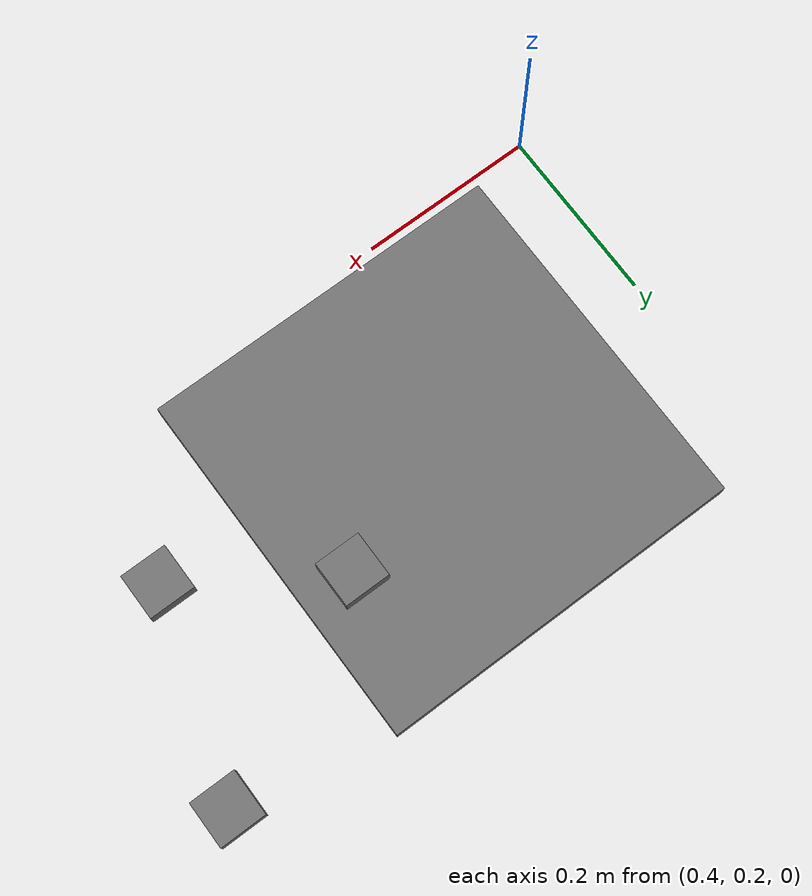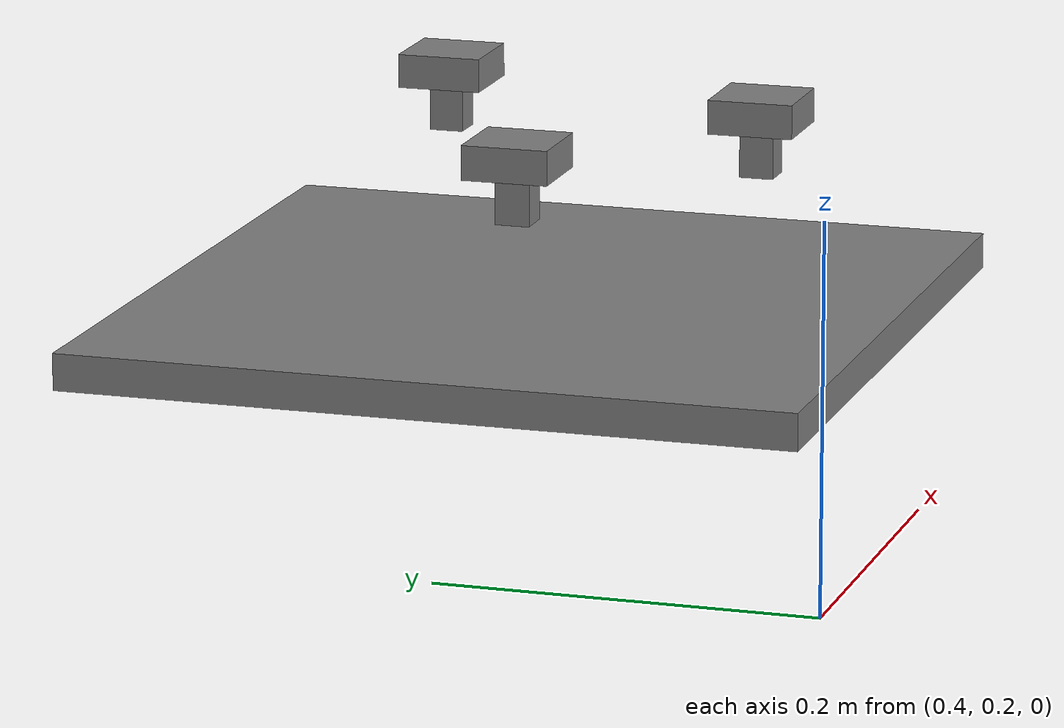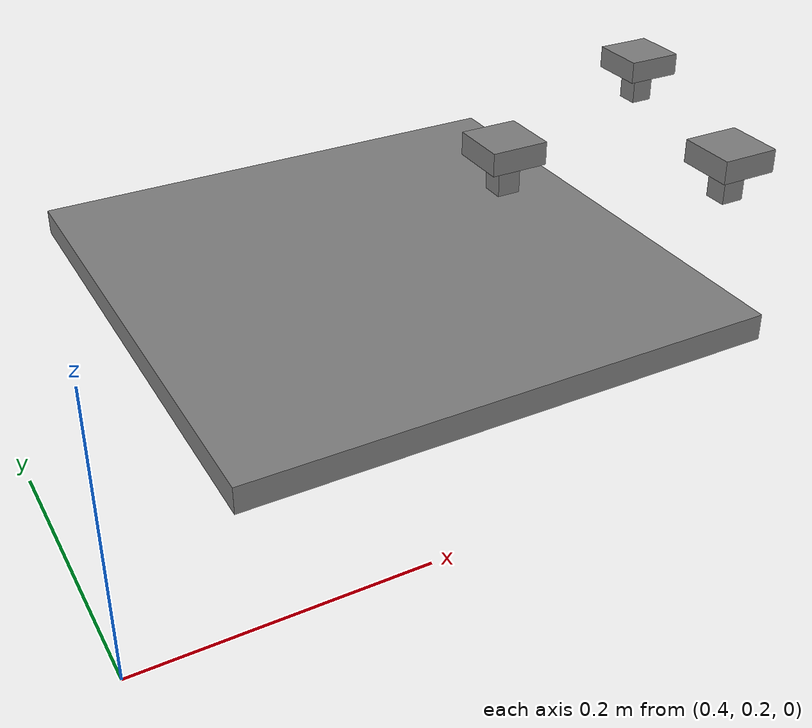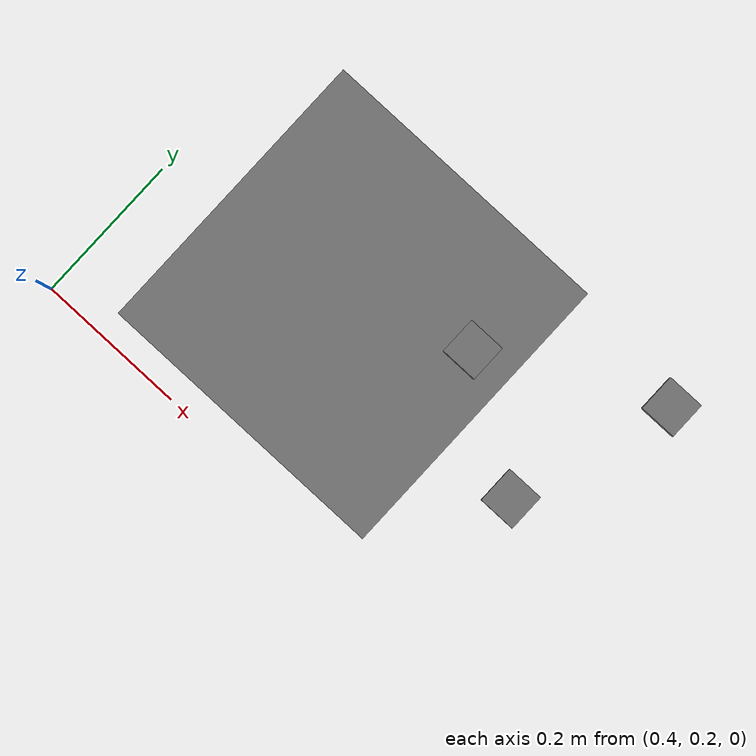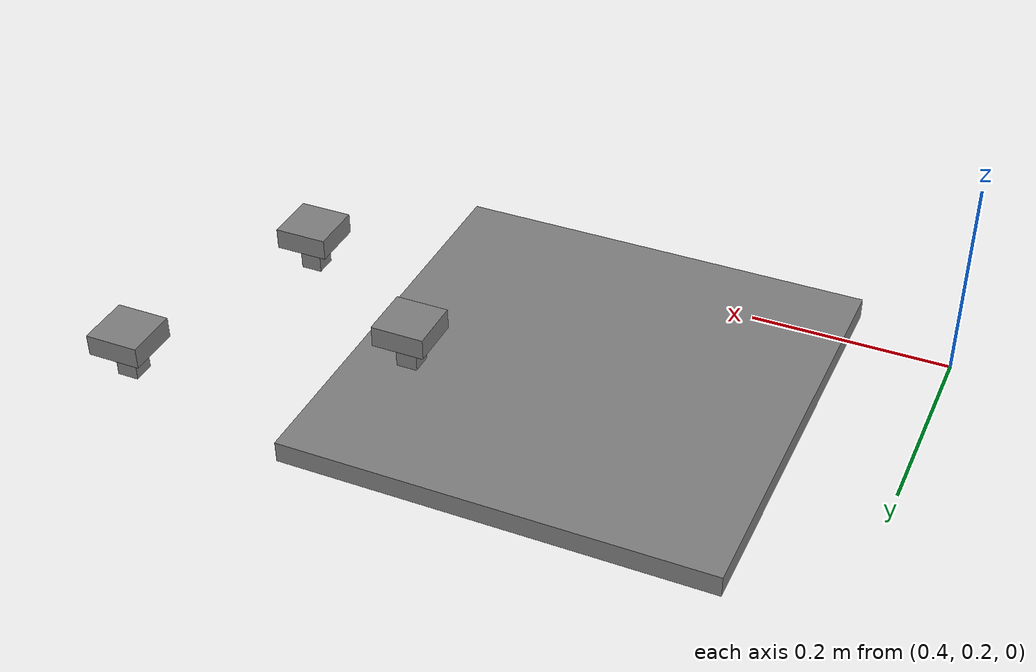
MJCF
<mujoco model="task_board">

	<compiler angle="radian" meshdir="assets" autolimits="true" />

	<asset>
		<mesh name="board"           file="IROS2020_Practice - IROS2020_Practice_Base-1.STL" scale="0.001 0.001 0.001" />
		<mesh name="cable_routing_1" file="IROS2020_Practice - Cable Routing Base-1.STL" scale="0.001 0.001 0.001" />
		<mesh name="cable_routing_2" file="IROS2020_Practice - Cable Routing Base-2.STL" scale="0.001 0.001 0.001" />
		<mesh name="usb_clamp"       file="IROS2020_Practice - USB Cable Clamp-1.STL" scale="0.001 0.001 0.001" />
		<mesh name="usb_socket"      file="IROS2020_Practice - U09-AF-AF-B_USB_Socket-1.STL"/>
		<mesh name="wire_bolt_1"     file="IROS2020_Practice - bolt for flat cable-1.STL" scale="0.001 0.001 0.001" />
		<mesh name="wire_bolt_2"     file="IROS2020_Practice - bolt for flat cable-2.STL" scale="0.001 0.001 0.001" />
		<mesh name="wire_washer_1"   file="IROS2020_Practice - Washer for wire hook-1.STL" scale="0.001 0.001 0.001" />
		<mesh name="wire_washer_2"   file="IROS2020_Practice - Washer for wire hook-2.STL" scale="0.001 0.001 0.001" />

	</asset>
	<worldbody>

		<body name="task_board" pos="0.70162832 0.63506023 0.05866477" quat="0.7071 0 0 -0.7071">

		</body>
		<geom name="board" type="box" size="0.2 0.2 0.01" pos="0.68634715 0.43506023 0.06866477" />

		<geom name="wire_bolt_3" solref="0.00001 1" solimp="0.9 0.95 0.001 1 0.1" type="box"
			size="0.01 0.01 0.02" mass="2" pos="0.98311695 0.39026566 0.1" />

		<geom name="wire_bolt_2" solref="0.000001 1" solimp="0.9 0.95 0.001 1 0.1" type="box"
		size="0.01 0.01  0.02" mass="2" pos="0.83 0.49 0.1" />

		<geom name="wire_bolt_1" solref="0.000001 1" solimp="0.9 0.95 0.001 1 0.1" type="box"
		size="0.01 0.01 0.02" mass="2" pos="1.05 0.6 0.1" />

		<geom name="wire_washer_3" solref="0.000001 1" solimp="0.9 0.95 0.001 1 0.1" type="box"
		size="0.025 0.025 0.01" mass="2" pos="0.98311695 0.39026566 0.11779694" />

		<geom name="wire_washer_2" solref="0.000001 1" solimp="0.9 0.95 0.001 1 0.1" type="box"
		size="0.025 0.025 0.01" mass="2" pos="0.83 0.49 0.11779694" />

		<geom name="wire_washer_1" solref="0.000001 1" solimp="0.9 0.95 0.001 1 0.1" type="box"
		size="0.025 0.025 0.01" mass="2" pos="1.05 0.6 0.11779694" />
	</worldbody>
</mujoco>
